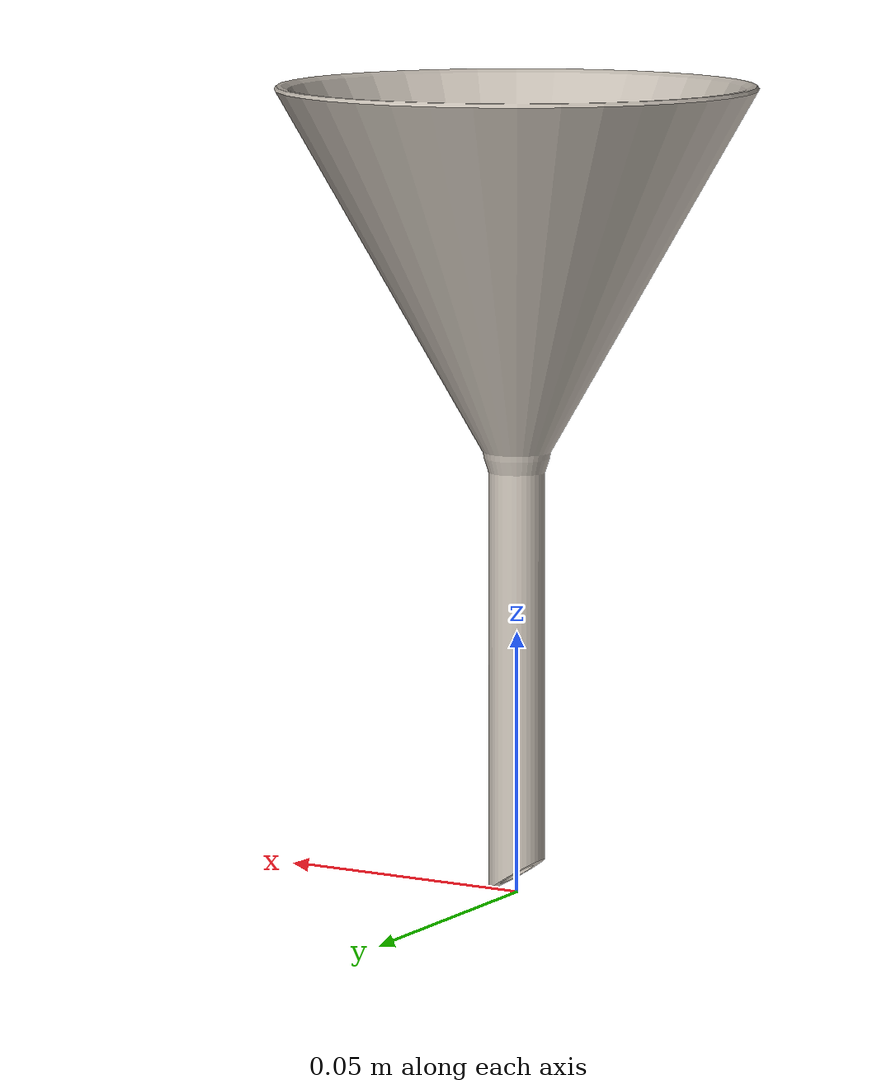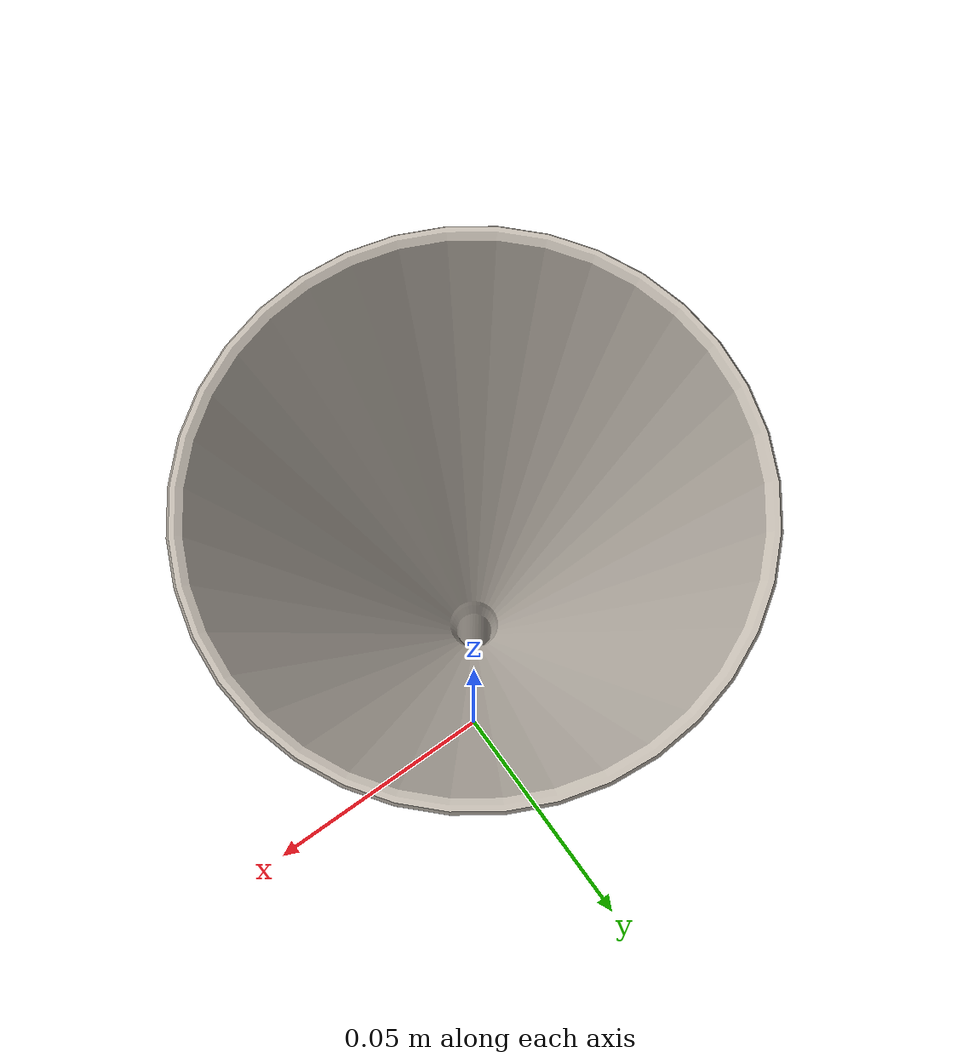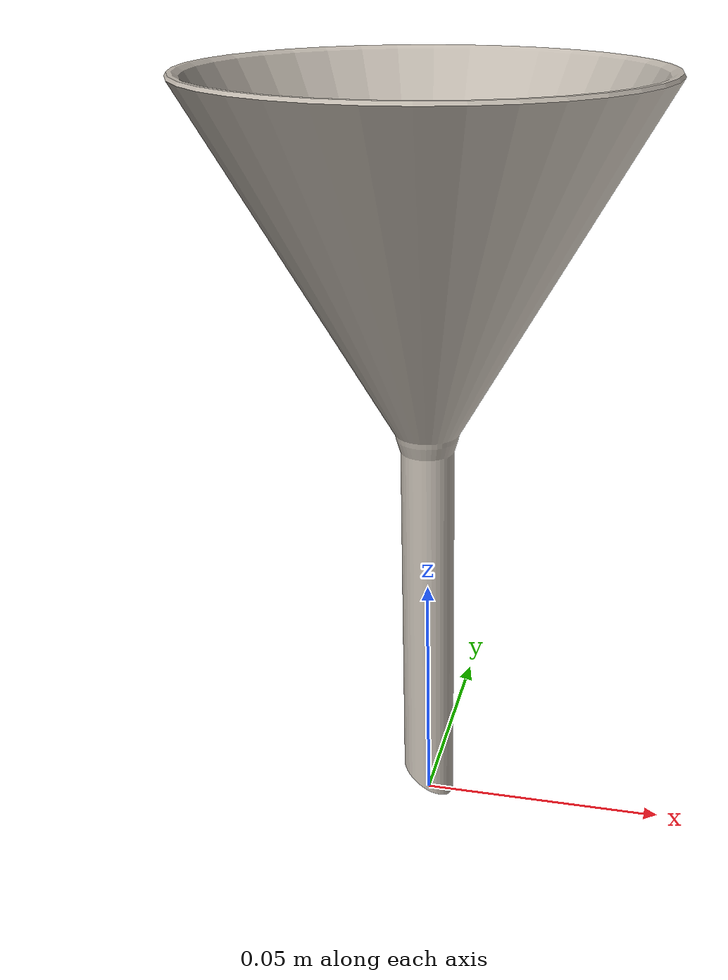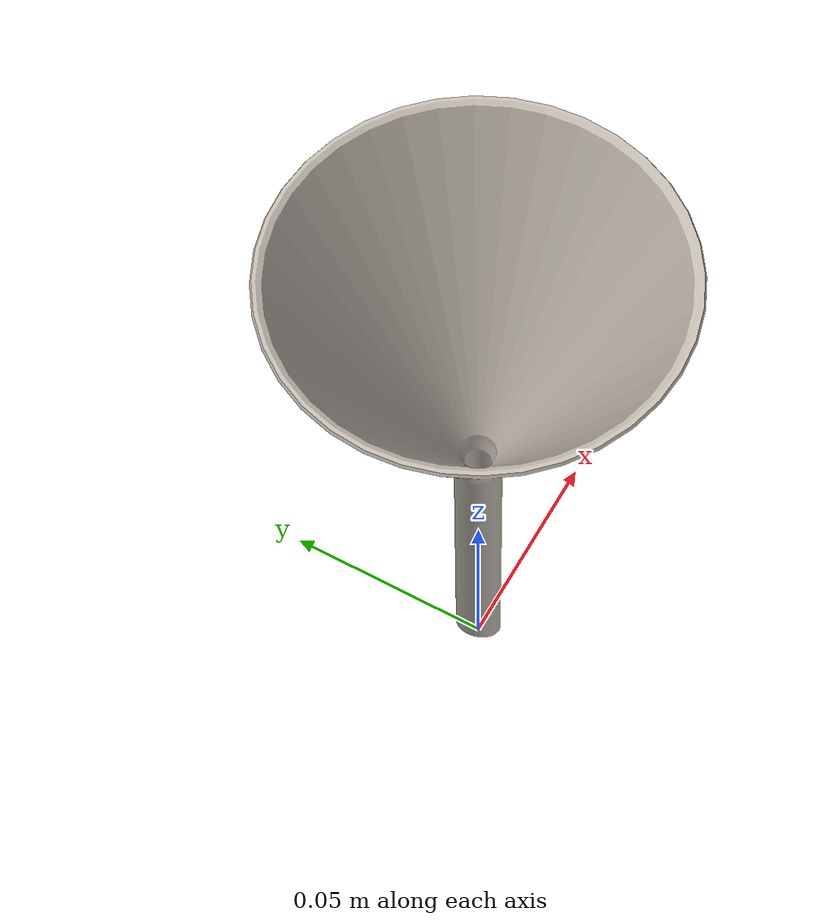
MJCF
<?xml version="1.0" ?>
<mujoco model="funnel">
  <asset>
    <texture type="2d" name="Funnel3" file="Funnel3.png"/>
    <material name="Funnel3" texture="Funnel3" specular="0.4000000000000001" shininess="0.001"/>
    <mesh file="funnel.obj" scale="1.5126 1.5126 1.5126"/>
    <mesh file="funnel/funnel_collision_0.obj" scale="1.5126 1.5126 1.5126"/>
    <mesh file="funnel/funnel_collision_1.obj" scale="1.5126 1.5126 1.5126"/>
    <mesh file="funnel/funnel_collision_2.obj" scale="1.5126 1.5126 1.5126"/>
    <mesh file="funnel/funnel_collision_3.obj" scale="1.5126 1.5126 1.5126"/>
    <mesh file="funnel/funnel_collision_4.obj" scale="1.5126 1.5126 1.5126"/>
    <mesh file="funnel/funnel_collision_5.obj" scale="1.5126 1.5126 1.5126"/>
    <mesh file="funnel/funnel_collision_6.obj" scale="1.5126 1.5126 1.5126"/>
    <mesh file="funnel/funnel_collision_7.obj" scale="1.5126 1.5126 1.5126"/>
    <mesh file="funnel/funnel_collision_8.obj" scale="1.5126 1.5126 1.5126"/>
    <mesh file="funnel/funnel_collision_9.obj" scale="1.5126 1.5126 1.5126"/>
    <mesh file="funnel/funnel_collision_10.obj" scale="1.5126 1.5126 1.5126"/>
    <mesh file="funnel/funnel_collision_11.obj" scale="1.5126 1.5126 1.5126"/>
    <mesh file="funnel/funnel_collision_12.obj" scale="1.5126 1.5126 1.5126"/>
    <mesh file="funnel/funnel_collision_13.obj" scale="1.5126 1.5126 1.5126"/>
    <mesh file="funnel/funnel_collision_14.obj" scale="1.5126 1.5126 1.5126"/>
    <mesh file="funnel/funnel_collision_15.obj" scale="1.5126 1.5126 1.5126"/>
    <mesh file="funnel/funnel_collision_16.obj" scale="1.5126 1.5126 1.5126"/>
    <mesh file="funnel/funnel_collision_17.obj" scale="1.5126 1.5126 1.5126"/>
    <mesh file="funnel/funnel_collision_18.obj" scale="1.5126 1.5126 1.5126"/>
    <mesh file="funnel/funnel_collision_19.obj" scale="1.5126 1.5126 1.5126"/>
    <mesh file="funnel/funnel_collision_20.obj" scale="1.5126 1.5126 1.5126"/>
  </asset>
  <worldbody>
    <body name="funnel">
      <inertial pos="0 0 0.0765" mass="0.02" diaginertia="0.0008 0.0008 0.0005"/>
      <geom material="Funnel3" mesh="funnel" class="visual"/>
      <geom mesh="funnel_collision_0"  class="collision"/>
      <geom mesh="funnel_collision_1"  class="collision"/>
      <geom mesh="funnel_collision_2"  class="collision"/>
      <geom mesh="funnel_collision_3"  class="collision"/>
      <geom mesh="funnel_collision_4"  class="collision"/>
      <geom mesh="funnel_collision_5"  class="collision"/>
      <geom mesh="funnel_collision_6"  class="collision"/>
      <geom mesh="funnel_collision_7"  class="collision"/>
      <geom mesh="funnel_collision_8"  class="collision"/>
      <geom mesh="funnel_collision_9"  class="collision"/>
      <geom mesh="funnel_collision_10"  class="collision"/>
      <geom mesh="funnel_collision_11"  class="collision"/>
      <geom mesh="funnel_collision_12"  class="collision"/>
      <geom mesh="funnel_collision_13"  class="collision"/>
      <geom mesh="funnel_collision_14"  class="collision"/>
      <geom mesh="funnel_collision_15"  class="collision"/>
      <geom mesh="funnel_collision_16"  class="collision"/>
      <geom mesh="funnel_collision_17"  class="collision"/>
      <geom mesh="funnel_collision_18"  class="collision"/>
      <geom mesh="funnel_collision_19"  class="collision"/>
      <geom mesh="funnel_collision_20"  class="collision"/>
      <site class="grasppoint" pos="0.0000 0.0000 0.0918"/>
      <site class="grasppoint" pos="0.0000 0.0000 0.1224"/>
      <site class="grasppoint" pos="0.0000 0.0000 0.1454"/>
    </body>
  </worldbody>
  <compiler boundmass="0.015" boundinertia="1e-05" angle="radian"/>
  <default>
    <default class="visual">
      <geom group="2" type="mesh" contype="0" conaffinity="0" density="50"/>
    </default>
    <default class="collision">
      <geom group="3" type="mesh" density="50" friction="1.5 0.1 0.1" solimp="0.9 0.95 0.001" solref="0.02 1"/>
    </default>
    <default class="grasppoint">
      <site type="sphere" size="0.005" group="4" rgba="0 0 1 1"/>
    </default>
  </default>
</mujoco>
